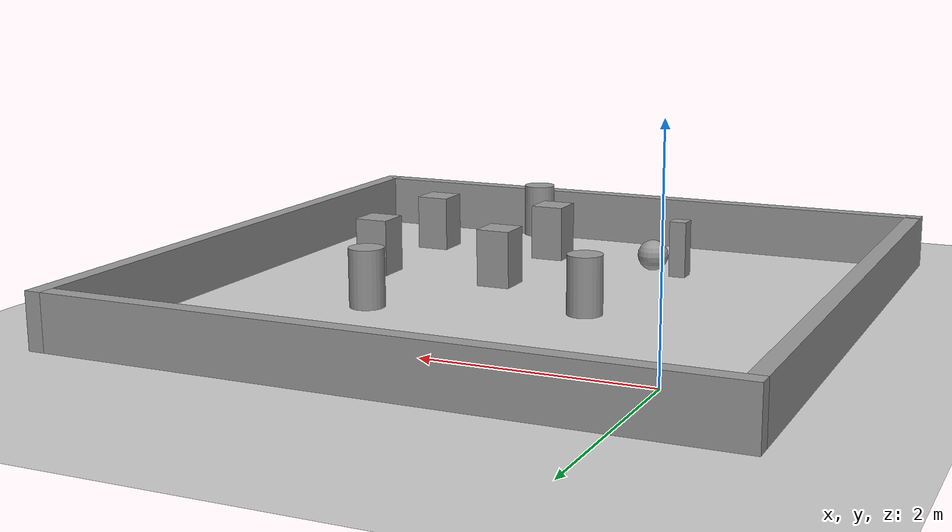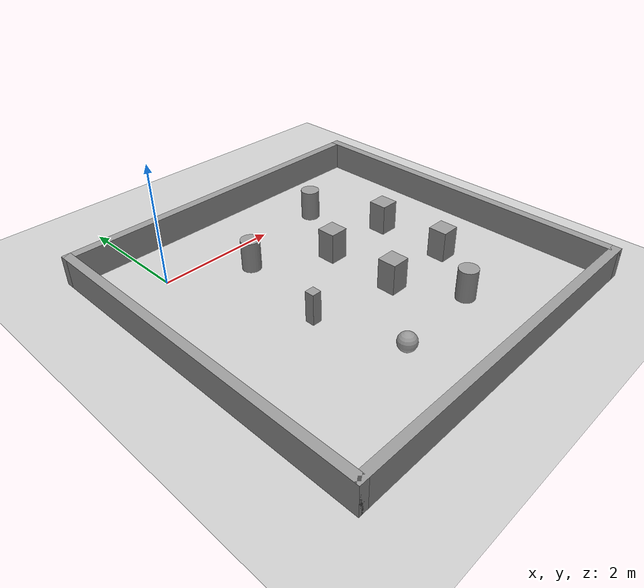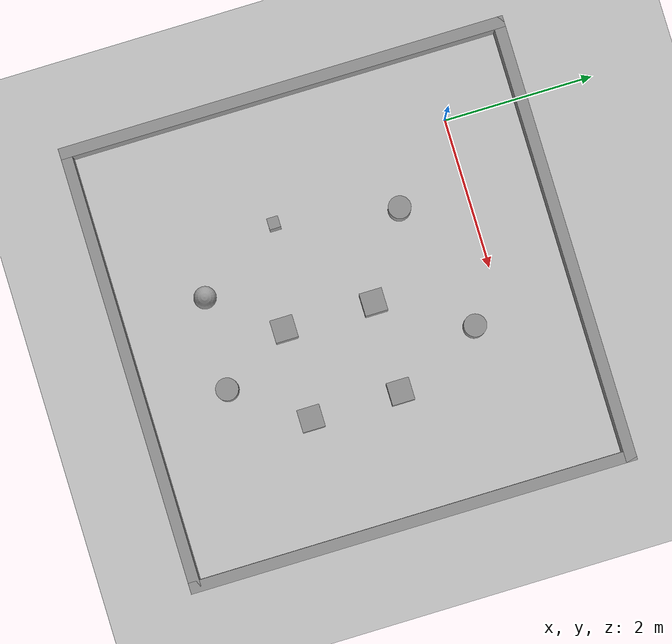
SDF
<sdf version="1.7">
 <world name="default">
  <light name="sun" type="directional">
   <pose>0 0 10 0 -0 0</pose>
   <diffuse>0.8 0.8 0.8 1</diffuse>
   <specular>0.2 0.2 0.2 1</specular>
   <attenuation>
    <range>1000</range>
    <constant>0.9</constant>
    <linear>0.01</linear>
    <quadratic>0.001</quadratic>
   </attenuation>
   <direction>-0.5 0.1 -0.9</direction>
   <spot><inner_angle>0</inner_angle><outer_angle>0</outer_angle><falloff>0</falloff></spot>
  </light>
  <model name="ground_plane">
   <static>1</static>
   <link name="link">
    <collision name="collision">
     <geometry><plane><normal>0 0 1</normal><size>100 100</size></plane></geometry>
     <surface><friction><ode><mu>100</mu><mu2>50</mu2></ode></friction></surface>
    </collision>
    <visual name="visual">
     <cast_shadows>0</cast_shadows>
     <geometry><plane><normal>0 0 1</normal><size>100 100</size></plane></geometry>
     <material>
      <script><uri>file://media/materials/scripts/gazebo.material</uri><name>Gazebo/Grey</name></script>
     </material>
    </visual>
   </link>
  </model>
  <physics type="ode">
   <real_time_update_rate>5000.0</real_time_update_rate>
   <max_step_size>0.001</max_step_size>
   <real_time_factor>1</real_time_factor>
   <ode>
    <solver>
     <type>quick</type>
     <iters>150</iters>
     <precon_iters>0</precon_iters>
     <sor>1.4</sor>
     <use_dynamic_moi_rescaling>1</use_dynamic_moi_rescaling>
    </solver>
    <constraints>
     <cfm>1e-05</cfm>
     <erp>0.2</erp>
     <contact_max_correcting_vel>2000</contact_max_correcting_vel>
     <contact_surface_layer>0.01</contact_surface_layer>
    </constraints>
   </ode>
  </physics>
  <scene><ambient>0.4 0.4 0.4 1</ambient><background>0.7 0.7 0.7 1</background><shadows>1</shadows></scene>
  <gravity>0 0 -9.8</gravity>
  <magnetic_field>6e-06 2.3e-05 -4.2e-05</magnetic_field>
  <atmosphere type="adiabatic"/>
  <spherical_coordinates>
   <surface_model>EARTH_WGS84</surface_model>
   <latitude_deg>0</latitude_deg>
   <longitude_deg>0</longitude_deg>
   <elevation>0</elevation>
   <heading_deg>0</heading_deg>
  </spherical_coordinates>
  <model name="Test_Environment_1">
   <pose>1.945 -1.915 0 0 -0 0</pose>
   <link name="Wall_16">
    <collision name="Wall_16_Collision">
     <geometry><box><size>6 0.15 0.5</size></box></geometry>
     <pose>0 0 0.25 0 -0 0</pose>
    </collision>
    <visual name="Wall_16_Visual">
     <pose>0 0 0.25 0 -0 0</pose>
     <geometry><box><size>6 0.15 0.5</size></box></geometry>
     <material>
      <script><uri>file://media/materials/scripts/gazebo.material</uri><name>Gazebo/Grey</name></script>
      <ambient>1 1 1 1</ambient>
     </material>
     <meta><layer>0</layer></meta>
    </visual>
    <pose>0 -2.925 0 0 -0 0</pose>
   </link>
   <link name="Wall_18">
    <collision name="Wall_18_Collision">
     <geometry><box><size>6 0.15 0.5</size></box></geometry>
     <pose>0 0 0.25 0 -0 0</pose>
    </collision>
    <visual name="Wall_18_Visual">
     <pose>0 0 0.25 0 -0 0</pose>
     <geometry><box><size>6 0.15 0.5</size></box></geometry>
     <material>
      <script><uri>file://media/materials/scripts/gazebo.material</uri><name>Gazebo/Grey</name></script>
      <ambient>1 1 1 1</ambient>
     </material>
     <meta><layer>0</layer></meta>
    </visual>
    <pose>2.925 0 0 0 -0 1.5708</pose>
   </link>
   <link name="Wall_19">
    <collision name="Wall_19_Collision">
     <geometry><box><size>6 0.15 0.5</size></box></geometry>
     <pose>0 0 0.25 0 -0 0</pose>
    </collision>
    <visual name="Wall_19_Visual">
     <pose>0 0 0.25 0 -0 0</pose>
     <geometry><box><size>6 0.15 0.5</size></box></geometry>
     <material>
      <script><uri>file://media/materials/scripts/gazebo.material</uri><name>Gazebo/Grey</name></script>
      <ambient>1 1 1 1</ambient>
     </material>
     <meta><layer>0</layer></meta>
    </visual>
    <pose>0 2.925 0 0 -0 3.14159</pose>
   </link>
   <link name="Wall_20">
    <collision name="Wall_20_Collision">
     <geometry><box><size>6 0.15 0.5</size></box></geometry>
     <pose>0 0 0.25 0 -0 0</pose>
    </collision>
    <visual name="Wall_20_Visual">
     <pose>0 0 0.25 0 -0 0</pose>
     <geometry><box><size>6 0.15 0.5</size></box></geometry>
     <material>
      <script><uri>file://media/materials/scripts/gazebo.material</uri><name>Gazebo/Grey</name></script>
      <ambient>1 1 1 1</ambient>
     </material>
     <meta><layer>0</layer></meta>
    </visual>
    <pose>-2.925 0 0 0 -0 -1.5708</pose>
   </link>
   <static>1</static>
  </model>
  <model name="slim_cylinder">
   <link name="link">
    <inertial>
     <mass>1</mass>
     <inertia><ixx>0.145833</ixx><ixy>0</ixy><ixz>0</ixz><iyy>0.145833</iyy><iyz>0</iyz><izz>0.125</izz></inertia>
    </inertial>
    <visual name="visual">
     <geometry><cylinder><radius>0.15</radius><length>0.5</length></cylinder></geometry>
     <material>
      <script><name>Gazebo/Grey</name><uri>file://media/materials/scripts/gazebo.material</uri></script>
      <shader type="pixel"><normal_map>__default__</normal_map></shader>
      <ambient>0.3 0.3 0.3 1</ambient>
      <diffuse>0.7 0.7 0.7 1</diffuse>
      <specular>0.01 0.01 0.01 1</specular>
      <emissive>0 0 0 1</emissive>
     </material>
    </visual>
    <collision name="collision">
     <geometry><cylinder><radius>0.15</radius><length>0.5</length></cylinder></geometry>
     <surface>
      <friction>
       <ode><mu>1</mu><mu2>1</mu2><fdir1>0 0 0</fdir1><slip1>0</slip1><slip2>0</slip2></ode>
       <torsional>
        <coefficient>1</coefficient>
        <patch_radius>0</patch_radius>
        <surface_radius>0</surface_radius>
        <use_patch_radius>1</use_patch_radius>
        <ode><slip>0</slip></ode>
       </torsional>
      </friction>
      <bounce><restitution_coefficient>0</restitution_coefficient><threshold>1e+06</threshold></bounce>
      <contact>
       <collide_without_contact>0</collide_without_contact>
       <collide_without_contact_bitmask>1</collide_without_contact_bitmask>
       <collide_bitmask>1</collide_bitmask>
       <ode>
        <soft_cfm>0</soft_cfm>
        <soft_erp>0.2</soft_erp>
        <kp>1e+13</kp>
        <kd>1</kd>
        <max_vel>0.01</max_vel>
        <min_depth>0</min_depth>
       </ode>
       <bullet>
        <split_impulse>1</split_impulse>
        <split_impulse_penetration_threshold>-0.01</split_impulse_penetration_threshold>
        <soft_cfm>0</soft_cfm>
        <soft_erp>0.2</soft_erp>
        <kp>1e+13</kp>
        <kd>1</kd>
       </bullet>
      </contact>
     </surface>
    </collision>
   </link>
   <link name="link_3">
    <inertial>
     <mass>1</mass>
     <inertia>
      <ixx>0.166667</ixx>
      <ixy>0</ixy>
      <ixz>0</ixz>
      <iyy>0.166667</iyy>
      <iyz>0</iyz>
      <izz>0.166667</izz>
     </inertia>
    </inertial>
    <pose>-0.276054 -1.609 0 0 -0 0</pose>
    <visual name="visual">
     <geometry><box><size>0.15 0.15 0.5</size></box></geometry>
     <material>
      <lighting>1</lighting>
      <script><uri>file://media/materials/scripts/gazebo.material</uri><name>Gazebo/Grey</name></script>
      <shader type="pixel"><normal_map>__default__</normal_map></shader>
      <ambient>0.3 0.3 0.3 1</ambient>
      <diffuse>0.7 0.7 0.7 1</diffuse>
      <specular>0.01 0.01 0.01 1</specular>
      <emissive>0 0 0 1</emissive>
     </material>
    </visual>
    <collision name="collision">
     <geometry><box><size>0.15 0.15 0.5</size></box></geometry>
     <surface>
      <friction>
       <ode><mu>1</mu><mu2>1</mu2><fdir1>0 0 0</fdir1><slip1>0</slip1><slip2>0</slip2></ode>
       <torsional>
        <coefficient>1</coefficient>
        <patch_radius>0</patch_radius>
        <surface_radius>0</surface_radius>
        <use_patch_radius>1</use_patch_radius>
        <ode><slip>0</slip></ode>
       </torsional>
      </friction>
      <bounce><restitution_coefficient>0</restitution_coefficient><threshold>1e+06</threshold></bounce>
      <contact>
       <collide_without_contact>0</collide_without_contact>
       <collide_without_contact_bitmask>1</collide_without_contact_bitmask>
       <collide_bitmask>1</collide_bitmask>
       <ode>
        <soft_cfm>0</soft_cfm>
        <soft_erp>0.2</soft_erp>
        <kp>1e+13</kp>
        <kd>1</kd>
        <max_vel>0.01</max_vel>
        <min_depth>0</min_depth>
       </ode>
       <bullet>
        <split_impulse>1</split_impulse>
        <split_impulse_penetration_threshold>-0.01</split_impulse_penetration_threshold>
        <soft_cfm>0</soft_cfm>
        <soft_erp>0.2</soft_erp>
        <kp>1e+13</kp>
        <kd>1</kd>
       </bullet>
      </contact>
     </surface>
    </collision>
   </link>
   <link name="link_4">
    <inertial>
     <mass>1</mass>
     <inertia><ixx>0.1</ixx><ixy>0</ixy><ixz>0</ixz><iyy>0.1</iyy><iyz>0</iyz><izz>0.1</izz></inertia>
    </inertial>
    <pose>0.358572 -2.73975 -0.35 0 -0 0</pose>
    <visual name="visual">
     <geometry><sphere><radius>0.15</radius></sphere></geometry>
     <material>
      <lighting>1</lighting>
      <script><uri>file://media/materials/scripts/gazebo.material</uri><name>Gazebo/Grey</name></script>
      <shader type="pixel"><normal_map>__default__</normal_map></shader>
      <ambient>0.3 0.3 0.3 1</ambient>
      <diffuse>0.7 0.7 0.7 1</diffuse>
      <specular>0.01 0.01 0.01 1</specular>
      <emissive>0 0 0 1</emissive>
     </material>
    </visual>
    <collision name="collision">
     <geometry><sphere><radius>0.15</radius></sphere></geometry>
     <surface>
      <friction>
       <ode><mu>1</mu><mu2>1</mu2><fdir1>0 0 0</fdir1><slip1>0</slip1><slip2>0</slip2></ode>
       <torsional>
        <coefficient>1</coefficient>
        <patch_radius>0</patch_radius>
        <surface_radius>0</surface_radius>
        <use_patch_radius>1</use_patch_radius>
        <ode><slip>0</slip></ode>
       </torsional>
      </friction>
      <bounce><restitution_coefficient>0</restitution_coefficient><threshold>1e+06</threshold></bounce>
      <contact>
       <collide_without_contact>0</collide_without_contact>
       <collide_without_contact_bitmask>1</collide_without_contact_bitmask>
       <collide_bitmask>1</collide_bitmask>
       <ode>
        <soft_cfm>0</soft_cfm>
        <soft_erp>0.2</soft_erp>
        <kp>1e+13</kp>
        <kd>1</kd>
        <max_vel>0.01</max_vel>
        <min_depth>0</min_depth>
       </ode>
       <bullet>
        <split_impulse>1</split_impulse>
        <split_impulse_penetration_threshold>-0.01</split_impulse_penetration_threshold>
        <soft_cfm>0</soft_cfm>
        <soft_erp>0.2</soft_erp>
        <kp>1e+13</kp>
        <kd>1</kd>
       </bullet>
      </contact>
     </surface>
    </collision>
   </link>
   <model name="rectangle_obstacles">
    <link name="obstacle_1">
     <inertial>
      <mass>1</mass>
      <inertia>
       <ixx>0.166667</ixx>
       <ixy>0</ixy>
       <ixz>0</ixz>
       <iyy>0.166667</iyy>
       <iyz>0</iyz>
       <izz>0.166667</izz>
      </inertia>
     </inertial>
     <pose>-0.6 -0.6 0 0 -0 0</pose>
     <visual name="visual">
      <geometry><box><size>0.3 0.3 0.5</size></box></geometry>
      <material>
       <lighting>1</lighting>
       <script><uri>file://media/materials/scripts/gazebo.material</uri><name>Gazebo/Grey</name></script>
       <shader type="pixel"><normal_map>__default__</normal_map></shader>
       <ambient>0.3 0.3 0.3 1</ambient>
       <diffuse>0.7 0.7 0.7 1</diffuse>
       <specular>0.01 0.01 0.01 1</specular>
       <emissive>0 0 0 1</emissive>
      </material>
     </visual>
     <collision name="collision">
      <geometry><box><size>0.3 0.3 0.5</size></box></geometry>
      <surface>
       <friction>
        <ode><mu>1</mu><mu2>1</mu2><fdir1>0 0 0</fdir1><slip1>0</slip1><slip2>0</slip2></ode>
        <torsional>
         <coefficient>1</coefficient>
         <patch_radius>0</patch_radius>
         <surface_radius>0</surface_radius>
         <use_patch_radius>1</use_patch_radius>
         <ode><slip>0</slip></ode>
        </torsional>
       </friction>
       <bounce><restitution_coefficient>0</restitution_coefficient><threshold>1e+06</threshold></bounce>
       <contact>
        <collide_without_contact>0</collide_without_contact>
        <collide_without_contact_bitmask>1</collide_without_contact_bitmask>
        <collide_bitmask>1</collide_bitmask>
        <ode>
         <soft_cfm>0</soft_cfm>
         <soft_erp>0.2</soft_erp>
         <kp>1e+13</kp>
         <kd>1</kd>
         <max_vel>0.01</max_vel>
         <min_depth>0</min_depth>
        </ode>
        <bullet>
         <split_impulse>1</split_impulse>
         <split_impulse_penetration_threshold>-0.01</split_impulse_penetration_threshold>
         <soft_cfm>0</soft_cfm>
         <soft_erp>0.2</soft_erp>
         <kp>1e+13</kp>
         <kd>1</kd>
        </bullet>
       </contact>
      </surface>
     </collision>
    </link>
    <link name="obstacle_2">
     <inertial>
      <mass>1</mass>
      <inertia>
       <ixx>0.166667</ixx>
       <ixy>0</ixy>
       <ixz>0</ixz>
       <iyy>0.166667</iyy>
       <iyz>0</iyz>
       <izz>0.166667</izz>
      </inertia>
     </inertial>
     <pose>-0.6 0.6 0 0 -0 0</pose>
     <visual name="visual">
      <geometry><box><size>0.3 0.3 0.5</size></box></geometry>
      <material>
       <lighting>1</lighting>
       <script><uri>file://media/materials/scripts/gazebo.material</uri><name>Gazebo/Grey</name></script>
       <shader type="pixel"><normal_map>__default__</normal_map></shader>
       <ambient>0.3 0.3 0.3 1</ambient>
       <diffuse>0.7 0.7 0.7 1</diffuse>
       <specular>0.01 0.01 0.01 1</specular>
       <emissive>0 0 0 1</emissive>
      </material>
     </visual>
     <collision name="collision">
      <geometry><box><size>0.3 0.3 0.5</size></box></geometry>
      <surface>
       <friction>
        <ode><mu>1</mu><mu2>1</mu2><fdir1>0 0 0</fdir1><slip1>0</slip1><slip2>0</slip2></ode>
        <torsional>
         <coefficient>1</coefficient>
         <patch_radius>0</patch_radius>
         <surface_radius>0</surface_radius>
         <use_patch_radius>1</use_patch_radius>
         <ode><slip>0</slip></ode>
        </torsional>
       </friction>
       <bounce><restitution_coefficient>0</restitution_coefficient><threshold>1e+06</threshold></bounce>
       <contact>
        <collide_without_contact>0</collide_without_contact>
        <collide_without_contact_bitmask>1</collide_without_contact_bitmask>
        <collide_bitmask>1</collide_bitmask>
        <ode>
         <soft_cfm>0</soft_cfm>
         <soft_erp>0.2</soft_erp>
         <kp>1e+13</kp>
         <kd>1</kd>
         <max_vel>0.01</max_vel>
         <min_depth>0</min_depth>
        </ode>
        <bullet>
         <split_impulse>1</split_impulse>
         <split_impulse_penetration_threshold>-0.01</split_impulse_penetration_threshold>
         <soft_cfm>0</soft_cfm>
         <soft_erp>0.2</soft_erp>
         <kp>1e+13</kp>
         <kd>1</kd>
        </bullet>
       </contact>
      </surface>
     </collision>
    </link>
    <link name="obstacle_3">
     <inertial>
      <mass>1</mass>
      <inertia>
       <ixx>0.166667</ixx>
       <ixy>0</ixy>
       <ixz>0</ixz>
       <iyy>0.166667</iyy>
       <iyz>0</iyz>
       <izz>0.166667</izz>
      </inertia>
     </inertial>
     <pose>0.6 0.6 0 0 -0 0</pose>
     <visual name="visual">
      <geometry><box><size>0.3 0.3 0.5</size></box></geometry>
      <material>
       <lighting>1</lighting>
       <script><uri>file://media/materials/scripts/gazebo.material</uri><name>Gazebo/Grey</name></script>
       <shader type="pixel"><normal_map>__default__</normal_map></shader>
       <ambient>0.3 0.3 0.3 1</ambient>
       <diffuse>0.7 0.7 0.7 1</diffuse>
       <specular>0.01 0.01 0.01 1</specular>
       <emissive>0 0 0 1</emissive>
      </material>
     </visual>
     <collision name="collision">
      <geometry><box><size>0.3 0.3 0.5</size></box></geometry>
      <surface>
       <friction>
        <ode><mu>1</mu><mu2>1</mu2><fdir1>0 0 0</fdir1><slip1>0</slip1><slip2>0</slip2></ode>
        <torsional>
         <coefficient>1</coefficient>
         <patch_radius>0</patch_radius>
         <surface_radius>0</surface_radius>
         <use_patch_radius>1</use_patch_radius>
         <ode><slip>0</slip></ode>
        </torsional>
       </friction>
       <bounce><restitution_coefficient>0</restitution_coefficient><threshold>1e+06</threshold></bounce>
       <contact>
        <collide_without_contact>0</collide_without_contact>
        <collide_without_contact_bitmask>1</collide_without_contact_bitmask>
        <collide_bitmask>1</collide_bitmask>
        <ode>
         <soft_cfm>0</soft_cfm>
         <soft_erp>0.2</soft_erp>
         <kp>1e+13</kp>
         <kd>1</kd>
         <max_vel>0.01</max_vel>
         <min_depth>0</min_depth>
        </ode>
        <bullet>
         <split_impulse>1</split_impulse>
         <split_impulse_penetration_threshold>-0.01</split_impulse_penetration_threshold>
         <soft_cfm>0</soft_cfm>
         <soft_erp>0.2</soft_erp>
         <kp>1e+13</kp>
         <kd>1</kd>
        </bullet>
       </contact>
      </surface>
     </collision>
    </link>
    <link name="obstacle_4">
     <inertial>
      <mass>1</mass>
      <inertia>
       <ixx>0.166667</ixx>
       <ixy>0</ixy>
       <ixz>0</ixz>
       <iyy>0.166667</iyy>
       <iyz>0</iyz>
       <izz>0.166667</izz>
      </inertia>
     </inertial>
     <pose>0.6 -0.6 0 0 -0 0</pose>
     <visual name="visual">
      <geometry><box><size>0.3 0.3 0.5</size></box></geometry>
      <material>
       <lighting>1</lighting>
       <script><uri>file://media/materials/scripts/gazebo.material</uri><name>Gazebo/Grey</name></script>
       <shader type="pixel"><normal_map>__default__</normal_map></shader>
       <ambient>0.3 0.3 0.3 1</ambient>
       <diffuse>0.7 0.7 0.7 1</diffuse>
       <specular>0.01 0.01 0.01 1</specular>
       <emissive>0 0 0 1</emissive>
      </material>
     </visual>
     <collision name="collision">
      <geometry><box><size>0.3 0.3 0.5</size></box></geometry>
      <surface>
       <friction>
        <ode><mu>1</mu><mu2>1</mu2><fdir1>0 0 0</fdir1><slip1>0</slip1><slip2>0</slip2></ode>
        <torsional>
         <coefficient>1</coefficient>
         <patch_radius>0</patch_radius>
         <surface_radius>0</surface_radius>
         <use_patch_radius>1</use_patch_radius>
         <ode><slip>0</slip></ode>
        </torsional>
       </friction>
       <bounce><restitution_coefficient>0</restitution_coefficient><threshold>1e+06</threshold></bounce>
       <contact>
        <collide_without_contact>0</collide_without_contact>
        <collide_without_contact_bitmask>1</collide_without_contact_bitmask>
        <collide_bitmask>1</collide_bitmask>
        <ode>
         <soft_cfm>0</soft_cfm>
         <soft_erp>0.2</soft_erp>
         <kp>1e+13</kp>
         <kd>1</kd>
         <max_vel>0.01</max_vel>
         <min_depth>0</min_depth>
        </ode>
        <bullet>
         <split_impulse>1</split_impulse>
         <split_impulse_penetration_threshold>-0.01</split_impulse_penetration_threshold>
         <soft_cfm>0</soft_cfm>
         <soft_erp>0.2</soft_erp>
         <kp>1e+13</kp>
         <kd>1</kd>
        </bullet>
       </contact>
      </surface>
     </collision>
    </link>
    <static>0</static>
    <pose>1.6682 -1.27509 0 0 -0 0</pose>
   </model>
   <model name="slim_cylinder">
    <link name="link">
     <inertial>
      <mass>1</mass>
      <inertia><ixx>0.145833</ixx><ixy>0</ixy><ixz>0</ixz><iyy>0.145833</iyy><iyz>0</iyz><izz>0.125</izz></inertia>
     </inertial>
     <visual name="visual">
      <geometry><cylinder><radius>0.15</radius><length>0.5</length></cylinder></geometry>
      <material>
       <script><name>Gazebo/Grey</name><uri>file://media/materials/scripts/gazebo.material</uri></script>
       <shader type="pixel"><normal_map>__default__</normal_map></shader>
       <ambient>0.3 0.3 0.3 1</ambient>
       <diffuse>0.7 0.7 0.7 1</diffuse>
       <specular>0.01 0.01 0.01 1</specular>
       <emissive>0 0 0 1</emissive>
      </material>
     </visual>
     <collision name="collision">
      <geometry><cylinder><radius>0.15</radius><length>0.5</length></cylinder></geometry>
      <surface>
       <friction>
        <ode><mu>1</mu><mu2>1</mu2><fdir1>0 0 0</fdir1><slip1>0</slip1><slip2>0</slip2></ode>
        <torsional>
         <coefficient>1</coefficient>
         <patch_radius>0</patch_radius>
         <surface_radius>0</surface_radius>
         <use_patch_radius>1</use_patch_radius>
         <ode><slip>0</slip></ode>
        </torsional>
       </friction>
       <bounce><restitution_coefficient>0</restitution_coefficient><threshold>1e+06</threshold></bounce>
       <contact>
        <collide_without_contact>0</collide_without_contact>
        <collide_without_contact_bitmask>1</collide_without_contact_bitmask>
        <collide_bitmask>1</collide_bitmask>
        <ode>
         <soft_cfm>0</soft_cfm>
         <soft_erp>0.2</soft_erp>
         <kp>1e+13</kp>
         <kd>1</kd>
         <max_vel>0.01</max_vel>
         <min_depth>0</min_depth>
        </ode>
        <bullet>
         <split_impulse>1</split_impulse>
         <split_impulse_penetration_threshold>-0.01</split_impulse_penetration_threshold>
         <soft_cfm>0</soft_cfm>
         <soft_erp>0.2</soft_erp>
         <kp>1e+13</kp>
         <kd>1</kd>
        </bullet>
       </contact>
      </surface>
     </collision>
    </link>
    <static>0</static>
    <pose>1.73521 0.488564 0 0 -0 0</pose>
   </model>
   <model name="slim_cylinder_0">
    <link name="link">
     <inertial>
      <mass>1</mass>
      <inertia><ixx>0.145833</ixx><ixy>0</ixy><ixz>0</ixz><iyy>0.145833</iyy><iyz>0</iyz><izz>0.125</izz></inertia>
     </inertial>
     <visual name="visual">
      <geometry><cylinder><radius>0.15</radius><length>0.5</length></cylinder></geometry>
      <material>
       <script><name>Gazebo/Grey</name><uri>file://media/materials/scripts/gazebo.material</uri></script>
       <shader type="pixel"><normal_map>__default__</normal_map></shader>
       <ambient>0.3 0.3 0.3 1</ambient>
       <diffuse>0.7 0.7 0.7 1</diffuse>
       <specular>0.01 0.01 0.01 1</specular>
       <emissive>0 0 0 1</emissive>
      </material>
     </visual>
     <collision name="collision">
      <geometry><cylinder><radius>0.15</radius><length>0.5</length></cylinder></geometry>
      <surface>
       <friction>
        <ode><mu>1</mu><mu2>1</mu2><fdir1>0 0 0</fdir1><slip1>0</slip1><slip2>0</slip2></ode>
        <torsional>
         <coefficient>1</coefficient>
         <patch_radius>0</patch_radius>
         <surface_radius>0</surface_radius>
         <use_patch_radius>1</use_patch_radius>
         <ode><slip>0</slip></ode>
        </torsional>
       </friction>
       <bounce><restitution_coefficient>0</restitution_coefficient><threshold>1e+06</threshold></bounce>
       <contact>
        <collide_without_contact>0</collide_without_contact>
        <collide_without_contact_bitmask>1</collide_without_contact_bitmask>
        <collide_bitmask>1</collide_bitmask>
        <ode>
         <soft_cfm>0</soft_cfm>
         <soft_erp>0.2</soft_erp>
         <kp>1e+13</kp>
         <kd>1</kd>
         <max_vel>0.01</max_vel>
         <min_depth>0</min_depth>
        </ode>
        <bullet>
         <split_impulse>1</split_impulse>
         <split_impulse_penetration_threshold>-0.01</split_impulse_penetration_threshold>
         <soft_cfm>0</soft_cfm>
         <soft_erp>0.2</soft_erp>
         <kp>1e+13</kp>
         <kd>1</kd>
        </bullet>
       </contact>
      </surface>
     </collision>
    </link>
    <static>0</static>
    <pose>1.59977 -2.79806 0 0 -0 0</pose>
   </model>
   <static>0</static>
   <pose>0.958526 -0.913778 0.5 0 -0 0</pose>
  </model>
 </world>
</sdf>
